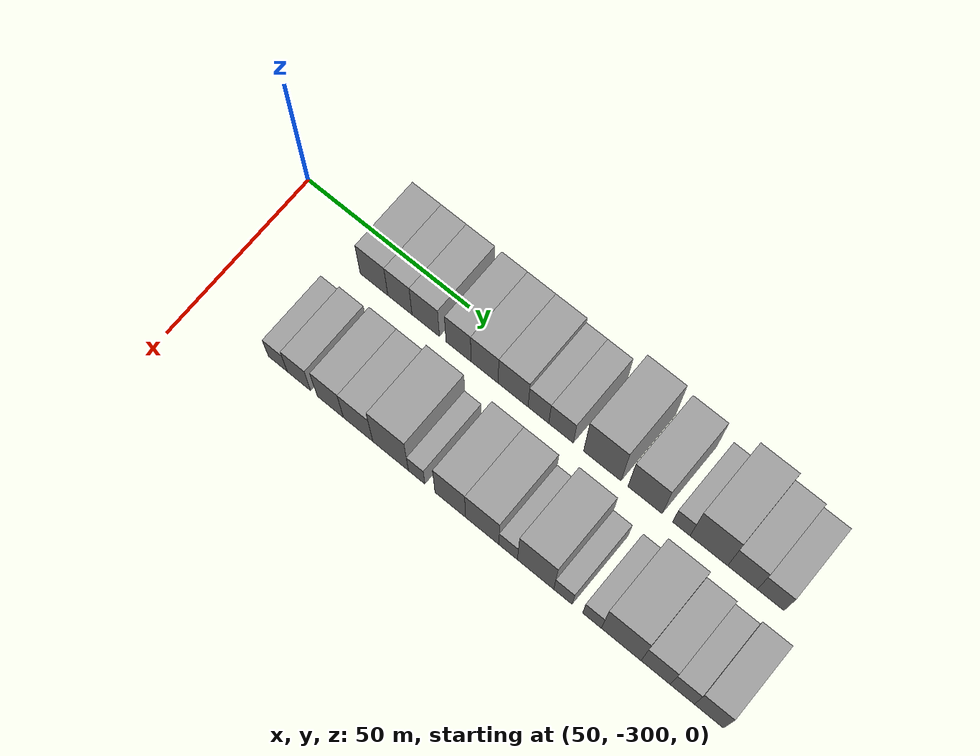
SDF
<sdf version="1.6">
 <world name="default">
  <model name="building_1">
   <static>1</static>
   <pose>50.0000 -270.7168 0 0.000000 0.000000 0.000000</pose>
   <link name="link">
    <pose>0 0 9.00 0 0 0</pose>
    <collision name="collision"><geometry><box><size>20.0000 8.5664 18.0000</size></box></geometry></collision>
    <visual name="visual">
     <cast_shadows>0</cast_shadows>
     <geometry><box><size>20.0000 8.5664 18.0000</size></box></geometry>
     <material>
      <script>
       <uri>model://grey_wall/materials/scripts</uri>
       <uri>model://grey_wall/materials/textures</uri>
       <name>vrc/grey_wall</name>
      </script>
     </material>
    </visual>
   </link>
  </model>
  <model name="building_2">
   <static>1</static>
   <pose>50.0000 -262.7219 0 0.000000 0.000000 0.000000</pose>
   <link name="link">
    <pose>0 0 9.00 0 0 0</pose>
    <collision name="collision"><geometry><box><size>20.0000 7.4233 18.0000</size></box></geometry></collision>
    <visual name="visual">
     <cast_shadows>0</cast_shadows>
     <geometry><box><size>20.0000 7.4233 18.0000</size></box></geometry>
     <material>
      <script>
       <uri>model://grey_wall/materials/scripts</uri>
       <uri>model://grey_wall/materials/textures</uri>
       <name>vrc/grey_wall</name>
      </script>
     </material>
    </visual>
   </link>
  </model>
  <model name="building_3">
   <static>1</static>
   <pose>50.0000 -254.8419 0 0.000000 0.000000 0.000000</pose>
   <link name="link">
    <pose>0 0 9.00 0 0 0</pose>
    <collision name="collision"><geometry><box><size>20.0000 8.3367 18.0000</size></box></geometry></collision>
    <visual name="visual">
     <cast_shadows>0</cast_shadows>
     <geometry><box><size>20.0000 8.3367 18.0000</size></box></geometry>
     <material>
      <script>
       <uri>model://grey_wall/materials/scripts</uri>
       <uri>model://grey_wall/materials/textures</uri>
       <name>vrc/grey_wall</name>
      </script>
     </material>
    </visual>
   </link>
  </model>
  <model name="building_4">
   <static>1</static>
   <pose>50.0000 -244.9049 0 0.000000 0.000000 0.000000</pose>
   <link name="link">
    <pose>0 0 9.00 0 0 0</pose>
    <collision name="collision"><geometry><box><size>20.0000 7.5373 18.0000</size></box></geometry></collision>
    <visual name="visual">
     <cast_shadows>0</cast_shadows>
     <geometry><box><size>20.0000 7.5373 18.0000</size></box></geometry>
     <material>
      <script>
       <uri>model://grey_wall/materials/scripts</uri>
       <uri>model://grey_wall/materials/textures</uri>
       <name>vrc/grey_wall</name>
      </script>
     </material>
    </visual>
   </link>
  </model>
  <model name="building_5">
   <static>1</static>
   <pose>50.0000 -237.0605 0 0.000000 0.000000 0.000000</pose>
   <link name="link">
    <pose>0 0 9.00 0 0 0</pose>
    <collision name="collision"><geometry><box><size>20.0000 8.1513 18.0000</size></box></geometry></collision>
    <visual name="visual">
     <cast_shadows>0</cast_shadows>
     <geometry><box><size>20.0000 8.1513 18.0000</size></box></geometry>
     <material>
      <script>
       <uri>model://grey_wall/materials/scripts</uri>
       <uri>model://grey_wall/materials/textures</uri>
       <name>vrc/grey_wall</name>
      </script>
     </material>
    </visual>
   </link>
  </model>
  <model name="building_6">
   <static>1</static>
   <pose>50.0000 -228.5198 0 0.000000 0.000000 0.000000</pose>
   <link name="link">
    <pose>0 0 9.00 0 0 0</pose>
    <collision name="collision"><geometry><box><size>20.0000 8.9301 18.0000</size></box></geometry></collision>
    <visual name="visual">
     <cast_shadows>0</cast_shadows>
     <geometry><box><size>20.0000 8.9301 18.0000</size></box></geometry>
     <material>
      <script>
       <uri>model://grey_wall/materials/scripts</uri>
       <uri>model://grey_wall/materials/textures</uri>
       <name>vrc/grey_wall</name>
      </script>
     </material>
    </visual>
   </link>
  </model>
  <model name="building_7">
   <static>1</static>
   <pose>50.0000 -220.9918 0 0.000000 0.000000 0.000000</pose>
   <link name="link">
    <pose>0 0 7.50 0 0 0</pose>
    <collision name="collision"><geometry><box><size>20.0000 6.1259 15.0000</size></box></geometry></collision>
    <visual name="visual">
     <cast_shadows>0</cast_shadows>
     <geometry><box><size>20.0000 6.1259 15.0000</size></box></geometry>
     <material>
      <script>
       <uri>model://grey_wall/materials/scripts</uri>
       <uri>model://grey_wall/materials/textures</uri>
       <name>vrc/grey_wall</name>
      </script>
     </material>
    </visual>
   </link>
  </model>
  <model name="building_8">
   <static>1</static>
   <pose>50.0000 -214.3216 0 0.000000 0.000000 0.000000</pose>
   <link name="link">
    <pose>0 0 7.50 0 0 0</pose>
    <collision name="collision"><geometry><box><size>20.0000 7.2145 15.0000</size></box></geometry></collision>
    <visual name="visual">
     <cast_shadows>0</cast_shadows>
     <geometry><box><size>20.0000 7.2145 15.0000</size></box></geometry>
     <material>
      <script>
       <uri>model://grey_wall/materials/scripts</uri>
       <uri>model://grey_wall/materials/textures</uri>
       <name>vrc/grey_wall</name>
      </script>
     </material>
    </visual>
   </link>
  </model>
  <model name="building_9">
   <static>1</static>
   <pose>50.0000 -202.2630 0 0.000000 0.000000 0.000000</pose>
   <link name="link">
    <pose>0 0 12.00 0 0 0</pose>
    <collision name="collision"><geometry><box><size>20.0000 10.9027 24.0000</size></box></geometry></collision>
    <visual name="visual">
     <cast_shadows>0</cast_shadows>
     <geometry><box><size>20.0000 10.9027 24.0000</size></box></geometry>
     <material>
      <script>
       <uri>model://grey_wall/materials/scripts</uri>
       <uri>model://grey_wall/materials/textures</uri>
       <name>vrc/grey_wall</name>
      </script>
     </material>
    </visual>
   </link>
  </model>
  <model name="building_10">
   <static>1</static>
   <pose>50.0000 -189.8915 0 0.000000 0.000000 0.000000</pose>
   <link name="link">
    <pose>0 0 10.50 0 0 0</pose>
    <collision name="collision"><geometry><box><size>20.0000 9.8403 21.0000</size></box></geometry></collision>
    <visual name="visual">
     <cast_shadows>0</cast_shadows>
     <geometry><box><size>20.0000 9.8403 21.0000</size></box></geometry>
     <material>
      <script>
       <uri>model://grey_wall/materials/scripts</uri>
       <uri>model://grey_wall/materials/textures</uri>
       <name>vrc/grey_wall</name>
      </script>
     </material>
    </visual>
   </link>
  </model>
  <model name="building_11">
   <static>1</static>
   <pose>50.0000 -179.4758 0 0.000000 0.000000 0.000000</pose>
   <link name="link">
    <pose>0 0 6.00 0 0 0</pose>
    <collision name="collision"><geometry><box><size>20.0000 4.9911 12.0000</size></box></geometry></collision>
    <visual name="visual">
     <cast_shadows>0</cast_shadows>
     <geometry><box><size>20.0000 4.9911 12.0000</size></box></geometry>
     <material>
      <script>
       <uri>model://grey_wall/materials/scripts</uri>
       <uri>model://grey_wall/materials/textures</uri>
       <name>vrc/grey_wall</name>
      </script>
     </material>
    </visual>
   </link>
  </model>
  <model name="building_12">
   <static>1</static>
   <pose>50.0000 -171.6714 0 0.000000 0.000000 0.000000</pose>
   <link name="link">
    <pose>0 0 12.00 0 0 0</pose>
    <collision name="collision"><geometry><box><size>20.0000 10.6177 24.0000</size></box></geometry></collision>
    <visual name="visual">
     <cast_shadows>0</cast_shadows>
     <geometry><box><size>20.0000 10.6177 24.0000</size></box></geometry>
     <material>
      <script>
       <uri>model://grey_wall/materials/scripts</uri>
       <uri>model://grey_wall/materials/textures</uri>
       <name>vrc/grey_wall</name>
      </script>
     </material>
    </visual>
   </link>
  </model>
  <model name="building_13">
   <static>1</static>
   <pose>50.0000 -162.2063 0 0.000000 0.000000 0.000000</pose>
   <link name="link">
    <pose>0 0 9.00 0 0 0</pose>
    <collision name="collision"><geometry><box><size>20.0000 8.3125 18.0000</size></box></geometry></collision>
    <visual name="visual">
     <cast_shadows>0</cast_shadows>
     <geometry><box><size>20.0000 8.3125 18.0000</size></box></geometry>
     <material>
      <script>
       <uri>model://grey_wall/materials/scripts</uri>
       <uri>model://grey_wall/materials/textures</uri>
       <name>vrc/grey_wall</name>
      </script>
     </material>
    </visual>
   </link>
  </model>
  <model name="building_14">
   <static>1</static>
   <pose>50.0000 -154.3164 0 0.000000 0.000000 0.000000</pose>
   <link name="link">
    <pose>0 0 7.50 0 0 0</pose>
    <collision name="collision"><geometry><box><size>20.0000 7.4673 15.0000</size></box></geometry></collision>
    <visual name="visual">
     <cast_shadows>0</cast_shadows>
     <geometry><box><size>20.0000 7.4673 15.0000</size></box></geometry>
     <material>
      <script>
       <uri>model://grey_wall/materials/scripts</uri>
       <uri>model://grey_wall/materials/textures</uri>
       <name>vrc/grey_wall</name>
      </script>
     </material>
    </visual>
   </link>
  </model>
  <model name="building_61">
   <static>1</static>
   <pose>79.0000 -275.0721 0 0.000000 0.000000 0.000000</pose>
   <link name="link">
    <pose>0 0 6.00 0 0 0</pose>
    <collision name="collision"><geometry><box><size>20.0000 5.8558 12.0000</size></box></geometry></collision>
    <visual name="visual">
     <cast_shadows>0</cast_shadows>
     <geometry><box><size>20.0000 5.8558 12.0000</size></box></geometry>
     <material>
      <script>
       <uri>model://grey_wall/materials/scripts</uri>
       <uri>model://grey_wall/materials/textures</uri>
       <name>vrc/grey_wall</name>
      </script>
     </material>
    </visual>
   </link>
  </model>
  <model name="building_62">
   <static>1</static>
   <pose>79.0000 -268.5609 0 0.000000 0.000000 0.000000</pose>
   <link name="link">
    <pose>0 0 7.50 0 0 0</pose>
    <collision name="collision"><geometry><box><size>20.0000 7.1666 15.0000</size></box></geometry></collision>
    <visual name="visual">
     <cast_shadows>0</cast_shadows>
     <geometry><box><size>20.0000 7.1666 15.0000</size></box></geometry>
     <material>
      <script>
       <uri>model://grey_wall/materials/scripts</uri>
       <uri>model://grey_wall/materials/textures</uri>
       <name>vrc/grey_wall</name>
      </script>
     </material>
    </visual>
   </link>
  </model>
  <model name="building_63">
   <static>1</static>
   <pose>79.0000 -258.9908 0 0.000000 0.000000 0.000000</pose>
   <link name="link">
    <pose>0 0 9.00 0 0 0</pose>
    <collision name="collision"><geometry><box><size>20.0000 7.9735 18.0000</size></box></geometry></collision>
    <visual name="visual">
     <cast_shadows>0</cast_shadows>
     <geometry><box><size>20.0000 7.9735 18.0000</size></box></geometry>
     <material>
      <script>
       <uri>model://grey_wall/materials/scripts</uri>
       <uri>model://grey_wall/materials/textures</uri>
       <name>vrc/grey_wall</name>
      </script>
     </material>
    </visual>
   </link>
  </model>
  <model name="building_64">
   <static>1</static>
   <pose>79.0000 -250.5445 0 0.000000 0.000000 0.000000</pose>
   <link name="link">
    <pose>0 0 9.00 0 0 0</pose>
    <collision name="collision"><geometry><box><size>20.0000 8.9191 18.0000</size></box></geometry></collision>
    <visual name="visual">
     <cast_shadows>0</cast_shadows>
     <geometry><box><size>20.0000 8.9191 18.0000</size></box></geometry>
     <material>
      <script>
       <uri>model://grey_wall/materials/scripts</uri>
       <uri>model://grey_wall/materials/textures</uri>
       <name>vrc/grey_wall</name>
      </script>
     </material>
    </visual>
   </link>
  </model>
  <model name="building_65">
   <static>1</static>
   <pose>79.0000 -240.7412 0 0.000000 0.000000 0.000000</pose>
   <link name="link">
    <pose>0 0 12.00 0 0 0</pose>
    <collision name="collision"><geometry><box><size>20.0000 10.6875 24.0000</size></box></geometry></collision>
    <visual name="visual">
     <cast_shadows>0</cast_shadows>
     <geometry><box><size>20.0000 10.6875 24.0000</size></box></geometry>
     <material>
      <script>
       <uri>model://grey_wall/materials/scripts</uri>
       <uri>model://grey_wall/materials/textures</uri>
       <name>vrc/grey_wall</name>
      </script>
     </material>
    </visual>
   </link>
  </model>
  <model name="building_66">
   <static>1</static>
   <pose>79.0000 -232.9635 0 0.000000 0.000000 0.000000</pose>
   <link name="link">
    <pose>0 0 6.00 0 0 0</pose>
    <collision name="collision"><geometry><box><size>20.0000 4.8679 12.0000</size></box></geometry></collision>
    <visual name="visual">
     <cast_shadows>0</cast_shadows>
     <geometry><box><size>20.0000 4.8679 12.0000</size></box></geometry>
     <material>
      <script>
       <uri>model://grey_wall/materials/scripts</uri>
       <uri>model://grey_wall/materials/textures</uri>
       <name>vrc/grey_wall</name>
      </script>
     </material>
    </visual>
   </link>
  </model>
  <model name="building_67">
   <static>1</static>
   <pose>79.0000 -223.0321 0 0.000000 0.000000 0.000000</pose>
   <link name="link">
    <pose>0 0 10.50 0 0 0</pose>
    <collision name="collision"><geometry><box><size>20.0000 8.9949 21.0000</size></box></geometry></collision>
    <visual name="visual">
     <cast_shadows>0</cast_shadows>
     <geometry><box><size>20.0000 8.9949 21.0000</size></box></geometry>
     <material>
      <script>
       <uri>model://grey_wall/materials/scripts</uri>
       <uri>model://grey_wall/materials/textures</uri>
       <name>vrc/grey_wall</name>
      </script>
     </material>
    </visual>
   </link>
  </model>
  <model name="building_68">
   <static>1</static>
   <pose>79.0000 -213.6621 0 0.000000 0.000000 0.000000</pose>
   <link name="link">
    <pose>0 0 10.50 0 0 0</pose>
    <collision name="collision"><geometry><box><size>20.0000 9.7450 21.0000</size></box></geometry></collision>
    <visual name="visual">
     <cast_shadows>0</cast_shadows>
     <geometry><box><size>20.0000 9.7450 21.0000</size></box></geometry>
     <material>
      <script>
       <uri>model://grey_wall/materials/scripts</uri>
       <uri>model://grey_wall/materials/textures</uri>
       <name>vrc/grey_wall</name>
      </script>
     </material>
    </visual>
   </link>
  </model>
  <model name="building_69">
   <static>1</static>
   <pose>79.0000 -206.0963 0 0.000000 0.000000 0.000000</pose>
   <link name="link">
    <pose>0 0 6.00 0 0 0</pose>
    <collision name="collision"><geometry><box><size>20.0000 5.3866 12.0000</size></box></geometry></collision>
    <visual name="visual">
     <cast_shadows>0</cast_shadows>
     <geometry><box><size>20.0000 5.3866 12.0000</size></box></geometry>
     <material>
      <script>
       <uri>model://grey_wall/materials/scripts</uri>
       <uri>model://grey_wall/materials/textures</uri>
       <name>vrc/grey_wall</name>
      </script>
     </material>
    </visual>
   </link>
  </model>
  <model name="building_70">
   <static>1</static>
   <pose>79.0000 -198.1721 0 0.000000 0.000000 0.000000</pose>
   <link name="link">
    <pose>0 0 12.00 0 0 0</pose>
    <collision name="collision"><geometry><box><size>20.0000 10.4617 24.0000</size></box></geometry></collision>
    <visual name="visual">
     <cast_shadows>0</cast_shadows>
     <geometry><box><size>20.0000 10.4617 24.0000</size></box></geometry>
     <material>
      <script>
       <uri>model://grey_wall/materials/scripts</uri>
       <uri>model://grey_wall/materials/textures</uri>
       <name>vrc/grey_wall</name>
      </script>
     </material>
    </visual>
   </link>
  </model>
  <model name="building_71">
   <static>1</static>
   <pose>79.0000 -190.3013 0 0.000000 0.000000 0.000000</pose>
   <link name="link">
    <pose>0 0 6.00 0 0 0</pose>
    <collision name="collision"><geometry><box><size>20.0000 5.2799 12.0000</size></box></geometry></collision>
    <visual name="visual">
     <cast_shadows>0</cast_shadows>
     <geometry><box><size>20.0000 5.2799 12.0000</size></box></geometry>
     <material>
      <script>
       <uri>model://grey_wall/materials/scripts</uri>
       <uri>model://grey_wall/materials/textures</uri>
       <name>vrc/grey_wall</name>
      </script>
     </material>
    </visual>
   </link>
  </model>
  <model name="building_72">
   <static>1</static>
   <pose>79.0000 -181.9989 0 0.000000 0.000000 0.000000</pose>
   <link name="link">
    <pose>0 0 6.00 0 0 0</pose>
    <collision name="collision"><geometry><box><size>20.0000 5.3250 12.0000</size></box></geometry></collision>
    <visual name="visual">
     <cast_shadows>0</cast_shadows>
     <geometry><box><size>20.0000 5.3250 12.0000</size></box></geometry>
     <material>
      <script>
       <uri>model://grey_wall/materials/scripts</uri>
       <uri>model://grey_wall/materials/textures</uri>
       <name>vrc/grey_wall</name>
      </script>
     </material>
    </visual>
   </link>
  </model>
  <model name="building_73">
   <static>1</static>
   <pose>79.0000 -173.7355 0 0.000000 0.000000 0.000000</pose>
   <link name="link">
    <pose>0 0 12.00 0 0 0</pose>
    <collision name="collision"><geometry><box><size>20.0000 11.2016 24.0000</size></box></geometry></collision>
    <visual name="visual">
     <cast_shadows>0</cast_shadows>
     <geometry><box><size>20.0000 11.2016 24.0000</size></box></geometry>
     <material>
      <script>
       <uri>model://grey_wall/materials/scripts</uri>
       <uri>model://grey_wall/materials/textures</uri>
       <name>vrc/grey_wall</name>
      </script>
     </material>
    </visual>
   </link>
  </model>
  <model name="building_74">
   <static>1</static>
   <pose>79.0000 -164.0741 0 0.000000 0.000000 0.000000</pose>
   <link name="link">
    <pose>0 0 9.00 0 0 0</pose>
    <collision name="collision"><geometry><box><size>20.0000 8.1213 18.0000</size></box></geometry></collision>
    <visual name="visual">
     <cast_shadows>0</cast_shadows>
     <geometry><box><size>20.0000 8.1213 18.0000</size></box></geometry>
     <material>
      <script>
       <uri>model://grey_wall/materials/scripts</uri>
       <uri>model://grey_wall/materials/textures</uri>
       <name>vrc/grey_wall</name>
      </script>
     </material>
    </visual>
   </link>
  </model>
  <model name="building_75">
   <static>1</static>
   <pose>79.0000 -156.6602 0 0.000000 0.000000 0.000000</pose>
   <link name="link">
    <pose>0 0 7.50 0 0 0</pose>
    <collision name="collision"><geometry><box><size>20.0000 6.7065 15.0000</size></box></geometry></collision>
    <visual name="visual">
     <cast_shadows>0</cast_shadows>
     <geometry><box><size>20.0000 6.7065 15.0000</size></box></geometry>
     <material>
      <script>
       <uri>model://grey_wall/materials/scripts</uri>
       <uri>model://grey_wall/materials/textures</uri>
       <name>vrc/grey_wall</name>
      </script>
     </material>
    </visual>
   </link>
  </model>
  <model name="building_76">
   <static>1</static>
   <pose>79.0000 -149.3009 0 0.000000 0.000000 0.000000</pose>
   <link name="link">
    <pose>0 0 9.00 0 0 0</pose>
    <collision name="collision"><geometry><box><size>20.0000 8.0122 18.0000</size></box></geometry></collision>
    <visual name="visual">
     <cast_shadows>0</cast_shadows>
     <geometry><box><size>20.0000 8.0122 18.0000</size></box></geometry>
     <material>
      <script>
       <uri>model://grey_wall/materials/scripts</uri>
       <uri>model://grey_wall/materials/textures</uri>
       <name>vrc/grey_wall</name>
      </script>
     </material>
    </visual>
   </link>
  </model>
 </world>
</sdf>
